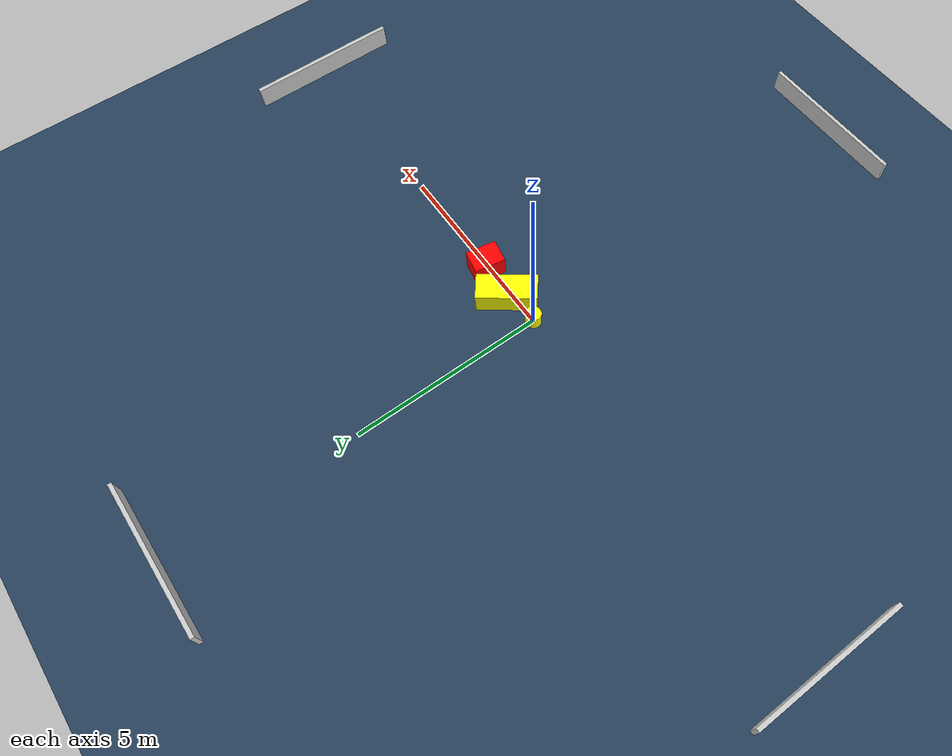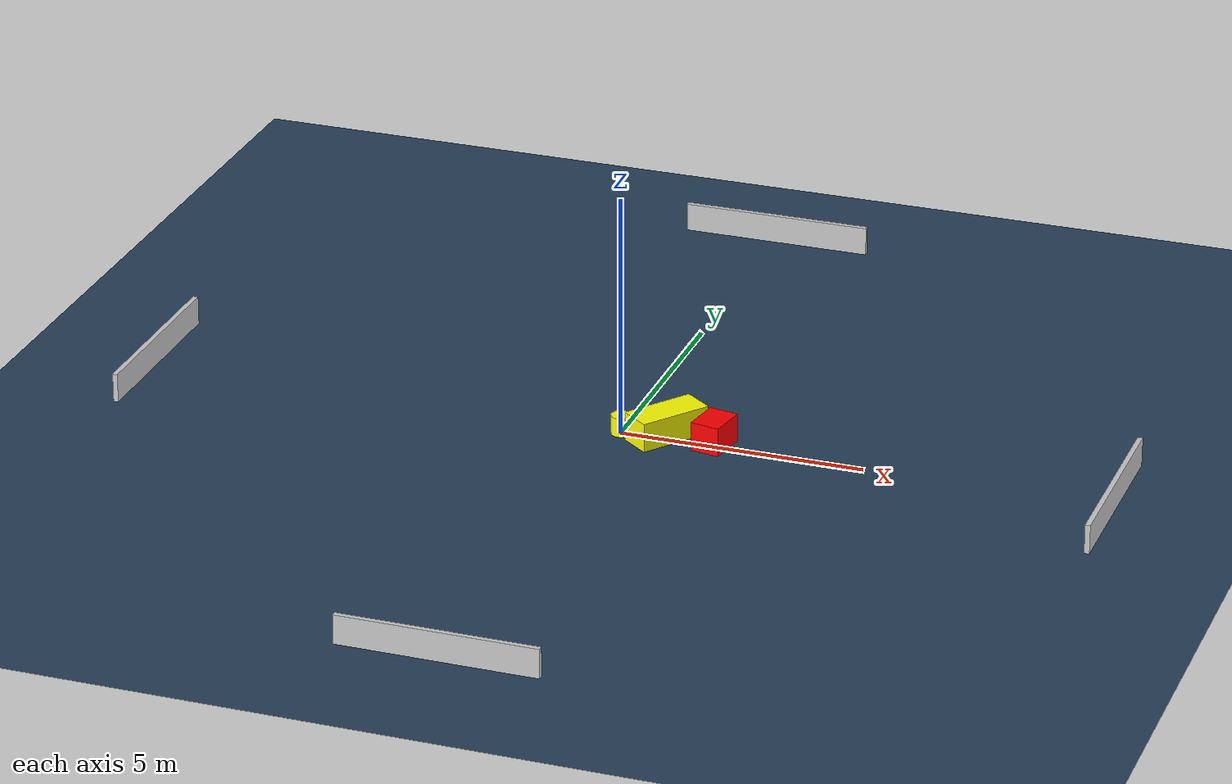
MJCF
<?xml version="1.0" ?>
<mujoco model="generated_environment">
  <option timestep="0.01" integrator="RK4" cone="elliptic"/>
  <default>
    <geom density="1"/>
  </default>
  <asset>
    <texture builtin="gradient" height="3072" name="skybox" rgb1="0.3 0.5 0.7" rgb2="0 0 0" type="skybox" width="512"/>
    <texture builtin="checker" height="300" name="groundplane" rgb1="0.2 0.3 0.4" rgb2="0.1 0.2 0.3" type="2d" width="300"/>
    <material name="groundplane" reflectance="0.2" texrepeat="5 5" texture="groundplane"/>
  </asset>
  <worldbody>
    <light dir="0 0 -1" directional="true" pos="0 0 1.5"/>
    <geom condim="3" friction="0.5 0.005 0.001" material="groundplane" name="floor" pos="0 0 0" size="0 0 0.05" type="plane"/>
    <body name="walls">
      <geom name="wall_1" condim="4" pos="-10.0 0.0 0.3" rgba="0.800000011920929 0.800000011920929 0.800000011920929 1.0" size="0.05 2.0 0.3" type="box"/>
      <geom name="wall_2" condim="4" pos="10.0 0.0 0.3" rgba="0.800000011920929 0.800000011920929 0.800000011920929 1.0" size="0.05 2.0 0.3" type="box"/>
      <geom name="wall_3" condim="4" pos="0.0 -10.0 0.3" rgba="0.800000011920929 0.800000011920929 0.800000011920929 1.0" size="2.0 0.05 0.3" type="box"/>
      <geom name="wall_4" condim="4" pos="0.0 10.0 0.3" rgba="0.800000011920929 0.800000011920929 0.800000011920929 1.0" size="2.0 0.05 0.3" type="box"/>
    </body>
    <body name="robot">
      <joint name="joint_x" type="slide" pos="0 0 0" axis="1 0 0"/>
      <joint name="joint_y" type="slide" pos="0 0 0" axis="0 1 0"/>
      <geom name="robot" type="cylinder" pos="0.0 0.0 0.2" size="0.2 0.2 0.0" mass="5.0" friction="1.0 0.005 0.0001" condim="4" rgba="1.0 1.0 0.0 1.0"/>
    </body>
    <body name="obstacle_1_movable">
      <geom name="obstacle_1_movable" condim="4" pos="0.90200135335606 0.1434939026345336 0.3" euler="0 0 142.91258802046508" friction="0.0 0.005 0.001" rgba="1.0 1.0 0.0 1.0" size="0.33730189562400054 0.7618660390793193 0.3" type="box" mass="0.1"/>
      <joint type="free"/>
    </body>
    <body name="obstacle_2_static">
      <geom name="obstacle_2_static" condim="4" pos="1.914413903731901 0.06786652719982537 0.3" euler="0 0 79.95275157237613" friction="0.0 0.005 0.001" rgba="1.0 0.0 0.0 1.0" size="0.3957998830030319 0.30306423626050677 0.3" type="box"/>
    </body>
  </worldbody>
  <actuator>
    <motor name="actuator_x" joint="joint_x" gear="1" ctrlrange="-1 1"/>
    <motor name="actuator_y" joint="joint_y" gear="1" ctrlrange="-1 1"/>
  </actuator>
</mujoco>
